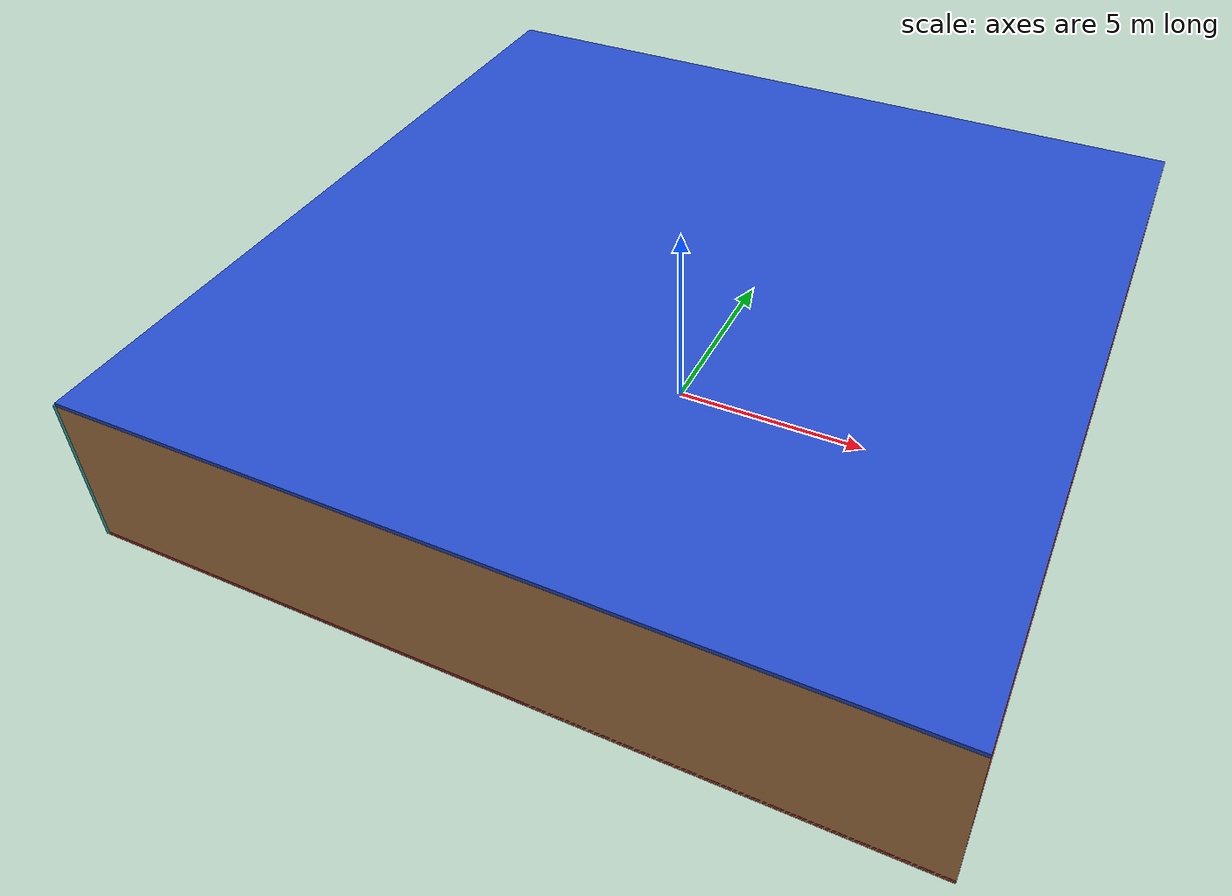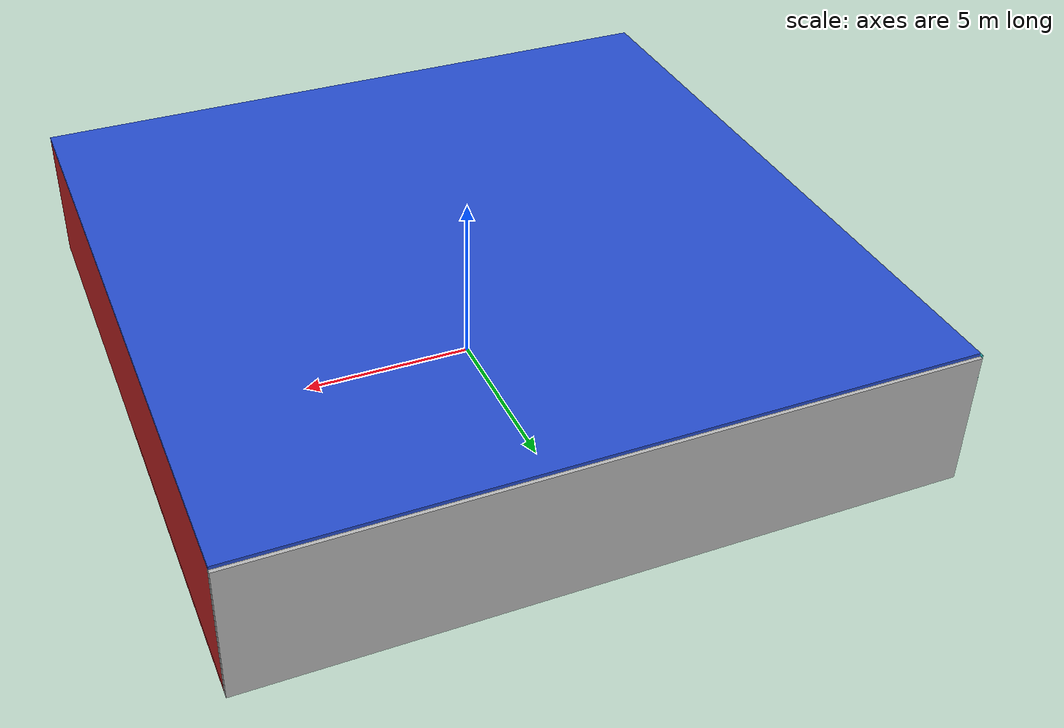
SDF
<sdf version="1.4">
 <world name="default">
  <physics type="ode">
   <max_step_size>0.001</max_step_size>
   <real_time_factor>1</real_time_factor>
   <real_time_update_rate>1000</real_time_update_rate>
   <gravity>0 0 -9.8</gravity>
  </physics>
  <scene><ambient>0.4 0.4 0.4 1</ambient><background>0.7 0.7 0.7 1</background><shadows>1</shadows></scene>
  <model name="Surrounding">
   <static>1</static>
   <link name="Ceiling">
    <collision name="Ceiling_Collision"><geometry><box><size>20 20 0.1</size></box></geometry></collision>
    <visual name="Ceiling_Visual">
     <geometry><box><size>20 20 0.1</size></box></geometry>
     <material>
      <script><uri>file://media/materials/scripts/gazebo.material</uri><name>Gazebo/Blue</name></script>
     </material>
    </visual>
    <pose>0 0 4.05 0 0 0</pose>
   </link>
   <link name="Wall_South">
    <collision name="Wall_South_Collision">
     <geometry><box><size>20 0 4</size></box></geometry>
     <pose>0 0 2 0 -0 0</pose>
    </collision>
    <visual name="Wall_South_Visual">
     <pose>0 0 2 0 -0 0</pose>
     <geometry><box><size>20 0 4</size></box></geometry>
     <material>
      <script><uri>file://media/materials/scripts/gazebo.material</uri><name>Gazebo/WoodFloor</name></script>
     </material>
    </visual>
    <velocity_decay><linear>0</linear><angular>0</angular></velocity_decay>
    <pose>0 -10 0 0 -0 0</pose>
   </link>
   <link name="Wall_East">
    <collision name="Wall_21_Collision">
     <geometry><box><size>20 0 4</size></box></geometry>
     <pose>0 0 2 0 -0 0</pose>
    </collision>
    <visual name="Wall_21_Visual">
     <pose>0 0 2 0 -0 0</pose>
     <geometry><box><size>20 0 4</size></box></geometry>
     <material>
      <script><uri>file://media/materials/scripts/gazebo.material</uri><name>Gazebo/RedGlow</name></script>
     </material>
    </visual>
    <velocity_decay><linear>0</linear><angular>0</angular></velocity_decay>
    <pose>10 0 0 0 -0 1.5708</pose>
   </link>
   <link name="Wall_North">
    <collision name="Wall_22_Collision">
     <geometry><box><size>20 0.2 4</size></box></geometry>
     <pose>0 0 2 0 -0 0</pose>
    </collision>
    <visual name="Wall_22_Visual">
     <pose>0 0 2 0 -0 0</pose>
     <geometry><box><size>20 0.2 4</size></box></geometry>
     <material>
      <script><uri>file://media/materials/scripts/gazebo.material</uri><name>Gazebo/LightOff</name></script>
     </material>
    </visual>
    <velocity_decay><linear>0</linear><angular>0</angular></velocity_decay>
    <pose>0 10 0 0 -0 0</pose>
   </link>
   <link name="Wall_West">
    <collision name="Wall_23_Collision">
     <geometry><box><size>20 0.2 4</size></box></geometry>
     <pose>0 0 2 0 -0 0</pose>
    </collision>
    <visual name="Wall_23_Visual">
     <pose>0 0 2 0 -0 0</pose>
     <geometry><box><size>20 0.2 4</size></box></geometry>
     <material>
      <script>
       <uri>file://media/materials/scripts/gazebo.material</uri>
       <name>Gazebo/TurquoiseGlowOutline</name>
      </script>
     </material>
    </visual>
    <velocity_decay><linear>0</linear><angular>0</angular></velocity_decay>
    <pose>-10 0 0 0 0 -1.5708</pose>
   </link>
   <link name="Ground_link">
    <collision name="collision">
     <pose>0 0 .05 0 -0 0</pose>
     <geometry><box><size>20 20 0.1</size></box></geometry>
    </collision>
    <visual name="visual">
     <pose>0 0 .05 0 -0 0</pose>
     <geometry><box><size>20 20 0.1</size></box></geometry>
     <material>
      <script><uri>file://media/materials/scripts/gazebo.material</uri><name>Gazebo/RedBright</name></script>
     </material>
    </visual>
   </link>
   <static>1</static>
  </model>
  <spherical_coordinates>
   <surface_model>EARTH_WGS84</surface_model>
   <latitude_deg>0</latitude_deg>
   <longitude_deg>0</longitude_deg>
   <elevation>0</elevation>
   <heading_deg>0</heading_deg>
  </spherical_coordinates>
  <light name="lightball_0" type="diffuse">
   <diffuse>0.8 0.8 0.8 1</diffuse>
   <specular>0.2 0.2 0.2 1</specular>
   <attenuation>
    <range>100</range>
    <constant>0.7</constant>
    <linear>0.01</linear>
    <quadratic>0.001</quadratic>
   </attenuation>
   <direction>-0.5 0.1 -0.9</direction>
   <pose>9.53761652763 4.09239236335 2.72225769911 0 0 0</pose>
  </light>
  <light name="lightball_1" type="diffuse">
   <diffuse>0.8 0.8 0.8 1</diffuse>
   <specular>0.2 0.2 0.2 1</specular>
   <attenuation>
    <range>100</range>
    <constant>0.7</constant>
    <linear>0.01</linear>
    <quadratic>0.001</quadratic>
   </attenuation>
   <direction>-0.5 0.1 -0.9</direction>
   <pose>7.8812978167 -0.322187312965 1.7048138783 0 0 0</pose>
  </light>
  <light name="lightball_2" type="diffuse">
   <diffuse>0.8 0.8 0.8 1</diffuse>
   <specular>0.2 0.2 0.2 1</specular>
   <attenuation>
    <range>100</range>
    <constant>0.7</constant>
    <linear>0.01</linear>
    <quadratic>0.001</quadratic>
   </attenuation>
   <direction>-0.5 0.1 -0.9</direction>
   <pose>9.69339334981 -3.92934403297 3.0499176291 0 0 0</pose>
  </light>
  <light name="lightball_3" type="diffuse">
   <diffuse>0.8 0.8 0.8 1</diffuse>
   <specular>0.2 0.2 0.2 1</specular>
   <attenuation>
    <range>100</range>
    <constant>0.7</constant>
    <linear>0.01</linear>
    <quadratic>0.001</quadratic>
   </attenuation>
   <direction>-0.5 0.1 -0.9</direction>
   <pose>-7.81777543802 8.01489557979 2.78077712212 0 0 0</pose>
  </light>
  <light name="lightball_4" type="diffuse">
   <diffuse>0.8 0.8 0.8 1</diffuse>
   <specular>0.2 0.2 0.2 1</specular>
   <attenuation>
    <range>100</range>
    <constant>0.7</constant>
    <linear>0.01</linear>
    <quadratic>0.001</quadratic>
   </attenuation>
   <direction>-0.5 0.1 -0.9</direction>
   <pose>3.49056486907 -4.08167338139 2.31668443787 0 0 0</pose>
  </light>
  <light name="lightball_5" type="diffuse">
   <diffuse>0.8 0.8 0.8 1</diffuse>
   <specular>0.2 0.2 0.2 1</specular>
   <attenuation>
    <range>100</range>
    <constant>0.7</constant>
    <linear>0.01</linear>
    <quadratic>0.001</quadratic>
   </attenuation>
   <direction>-0.5 0.1 -0.9</direction>
   <pose>-1.69541232992 7.60599674807 2.83620155089 0 0 0</pose>
  </light>
  <light name="lightball_6" type="diffuse">
   <diffuse>0.8 0.8 0.8 1</diffuse>
   <specular>0.2 0.2 0.2 1</specular>
   <attenuation>
    <range>100</range>
    <constant>0.7</constant>
    <linear>0.01</linear>
    <quadratic>0.001</quadratic>
   </attenuation>
   <direction>-0.5 0.1 -0.9</direction>
   <pose>6.43308959135 -6.46968005271 0.863403454329 0 0 0</pose>
  </light>
  <light name="lightball_7" type="diffuse">
   <diffuse>0.8 0.8 0.8 1</diffuse>
   <specular>0.2 0.2 0.2 1</specular>
   <attenuation>
    <range>100</range>
    <constant>0.7</constant>
    <linear>0.01</linear>
    <quadratic>0.001</quadratic>
   </attenuation>
   <direction>-0.5 0.1 -0.9</direction>
   <pose>-2.38647101114 7.98198572328 1.81002317214 0 0 0</pose>
  </light>
  <light name="lightball_8" type="diffuse">
   <diffuse>0.8 0.8 0.8 1</diffuse>
   <specular>0.2 0.2 0.2 1</specular>
   <attenuation>
    <range>100</range>
    <constant>0.7</constant>
    <linear>0.01</linear>
    <quadratic>0.001</quadratic>
   </attenuation>
   <direction>-0.5 0.1 -0.9</direction>
   <pose>-7.9420087217 -2.79552432253 1.04442670115 0 0 0</pose>
  </light>
  <light name="lightball_9" type="diffuse">
   <diffuse>0.8 0.8 0.8 1</diffuse>
   <specular>0.2 0.2 0.2 1</specular>
   <attenuation>
    <range>100</range>
    <constant>0.7</constant>
    <linear>0.01</linear>
    <quadratic>0.001</quadratic>
   </attenuation>
   <direction>-0.5 0.1 -0.9</direction>
   <pose>7.0146293435 6.12794158495 0.646010949615 0 0 0</pose>
  </light>
  <light name="lightball_10" type="diffuse">
   <diffuse>0.8 0.8 0.8 1</diffuse>
   <specular>0.2 0.2 0.2 1</specular>
   <attenuation>
    <range>100</range>
    <constant>0.7</constant>
    <linear>0.01</linear>
    <quadratic>0.001</quadratic>
   </attenuation>
   <direction>-0.5 0.1 -0.9</direction>
   <pose>3.50256015791 4.77125722643 3.19491955059 0 0 0</pose>
  </light>
  <light name="lightball_11" type="diffuse">
   <diffuse>0.8 0.8 0.8 1</diffuse>
   <specular>0.2 0.2 0.2 1</specular>
   <attenuation>
    <range>100</range>
    <constant>0.7</constant>
    <linear>0.01</linear>
    <quadratic>0.001</quadratic>
   </attenuation>
   <direction>-0.5 0.1 -0.9</direction>
   <pose>-4.31714111063 -3.42522449893 1.41671577127 0 0 0</pose>
  </light>
  <light name="lightball_12" type="diffuse">
   <diffuse>0.8 0.8 0.8 1</diffuse>
   <specular>0.2 0.2 0.2 1</specular>
   <attenuation>
    <range>100</range>
    <constant>0.7</constant>
    <linear>0.01</linear>
    <quadratic>0.001</quadratic>
   </attenuation>
   <direction>-0.5 0.1 -0.9</direction>
   <pose>-8.5538595362 3.68865627876 2.70181074742 0 0 0</pose>
  </light>
  <light name="lightball_13" type="diffuse">
   <diffuse>0.8 0.8 0.8 1</diffuse>
   <specular>0.2 0.2 0.2 1</specular>
   <attenuation>
    <range>100</range>
    <constant>0.7</constant>
    <linear>0.01</linear>
    <quadratic>0.001</quadratic>
   </attenuation>
   <direction>-0.5 0.1 -0.9</direction>
   <pose>-6.95578386757 2.83395394993 3.87128573225 0 0 0</pose>
  </light>
  <include>
   <uri>model://robocup_3Dsim_goal</uri>
   <pose>-1.69533538999 -1.65589250786 0 0 0 0.902805423912</pose>
  </include>
  <include>
   <uri>model://robocup_3Dsim_goal</uri>
   <pose>-1.28810907036 2.60276812298 0 0 0 2.56190268603</pose>
  </include>
  <include>
   <uri>model://robocup_3Dsim_goal</uri>
   <pose>1.14630223595 -0.534495113144 0 0 0 1.08571579445</pose>
  </include>
  <include>
   <uri>model://robocup_3Dsim_goal</uri>
   <pose>2.16359243964 5.01818771069 0 0 0 0.409274031796</pose>
  </include>
  <include>
   <uri>model://construction_cone</uri>
   <pose>4.18758877967 2.13059556198 0 0 0 0.592863574118</pose>
  </include>
  <include><uri>model://table</uri><pose>6.56721198363 5.13404378093 0 0 0 1.42562986808</pose></include>
 </world>
</sdf>

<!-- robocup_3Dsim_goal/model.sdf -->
<sdf version="1.5">
  <model name="robocup_3d_goal">
    <static>true</static>
    <link name="left_post">
      <pose>0 1.05 0.45 0 0 0</pose>
      <collision name="collision">
        <geometry>
          <cylinder>
            <radius>0.05</radius>
            <length>0.9</length>
          </cylinder>
        </geometry>
      </collision>
      <visual name="visual">
        <geometry>
          <cylinder>
            <radius>0.05</radius>
            <length>0.9</length>
          </cylinder>
        </geometry>
        <material>
          <script>
            <uri>file://media/materials/scripts/gazebo.material</uri>
            <name>Gazebo/ZincYellow</name>
          </script>
        </material>
      </visual>
    </link>
    <link name="left_support_horiz_lower">
      <pose>0.30 1.05 0.01 0 0 0</pose>
      <collision name="collision">
        <geometry>
          <box>
            <size>0.50 0.02 0.02</size>
          </box>
        </geometry>
      </collision>
      <visual name="visual">
        <geometry>
          <box>
            <size>0.50 0.02 0.02</size>
          </box>
        </geometry>
        <material>
          <script>
            <uri>file://media/materials/scripts/gazebo.material</uri>
            <name>Gazebo/White</name>
          </script>
        </material>
      </visual>
    </link>
    <link name="left_support_horiz_upper">
      <pose>0.30 1.05 0.79 0 0 0</pose>
      <collision name="collision">
        <geometry>
          <box>
            <size>0.50 0.02 0.02</size>
          </box>
        </geometry>
      </collision>
      <visual name="visual">
        <geometry>
          <box>
            <size>0.50 0.02 0.02</size>
          </box>
        </geometry>
        <material>
          <script>
            <uri>file://media/materials/scripts/gazebo.material</uri>
            <name>Gazebo/White</name>
          </script>
        </material>
      </visual>
    </link>
    <link name="left_support_vertical">
      <pose>0.56 1.05 0.4 0 1.5708 0</pose>
      <collision name="collision">
        <geometry>
          <box>
            <size>0.80 0.02 0.02</size>
          </box>
        </geometry>
      </collision>
      <visual name="visual">
        <geometry>
          <box>
            <size>0.80 0.02 0.02</size>
          </box>
        </geometry>
        <material>
          <script>
            <uri>file://media/materials/scripts/gazebo.material</uri>
            <name>Gazebo/White</name>
          </script>
        </material>
      </visual>
    </link>
    <link name="right_support_horiz_lower">
      <pose>0.30 -1.05 0.01 0 0 0</pose>
      <collision name="collision">
        <geometry>
          <box>
            <size>0.50 0.02 0.02</size>
          </box>
        </geometry>
      </collision>
      <visual name="visual">
        <geometry>
          <box>
            <size>0.50 0.02 0.02</size>
          </box>
        </geometry>
        <material>
          <script>
            <uri>file://media/materials/scripts/gazebo.material</uri>
            <name>Gazebo/White</name>
          </script>
        </material>
      </visual>
    </link>
    <link name="right_support_horiz_upper">
      <pose>0.30 -1.05 0.79 0 0 0</pose>
      <collision name="collision">
        <geometry>
          <box>
            <size>0.50 0.02 0.02</size>
          </box>
        </geometry>
      </collision>
      <visual name="visual">
        <geometry>
          <box>
            <size>0.50 0.02 0.02</size>
          </box>
        </geometry>
        <material>
          <script>
            <uri>file://media/materials/scripts/gazebo.material</uri>
            <name>Gazebo/White</name>
          </script>
        </material>
      </visual>
    </link>
    <link name="right_support_vertical">
      <pose>0.56 -1.05 0.4 0 1.5708 0</pose>
      <collision name="collision">
        <geometry>
          <box>
            <size>0.80 0.02 0.02</size>
          </box>
        </geometry>
      </collision>
      <visual name="visual">
        <geometry>
          <box>
            <size>0.80 0.02 0.02</size>
          </box>
        </geometry>
        <material>
          <script>
            <uri>file://media/materials/scripts/gazebo.material</uri>
            <name>Gazebo/White</name>
          </script>
        </material>
      </visual>
    </link>
    <link name="center_support_horiz_lower">
      <pose>0.56 0 0.01 0 1.5708 0</pose>
      <collision name="collision">
        <geometry>
          <box>
            <size>0.02 2.08 0.02</size>
          </box>
        </geometry>
      </collision>
      <visual name="visual">
        <geometry>
          <box>
            <size>0.02 2.08 0.02</size>
          </box>
        </geometry>
        <material>
          <script>
            <uri>file://media/materials/scripts/gazebo.material</uri>
            <name>Gazebo/White</name>
          </script>
        </material>
      </visual>
    </link>
    <link name="center_support_horiz_upper">
      <pose>0.56 0 0.79 0 1.5708 0</pose>
      <collision name="collision">
        <geometry>
          <box>
            <size>0.02 2.08 0.02</size>
          </box>
        </geometry>
      </collision>
      <visual name="visual">
        <geometry>
          <box>
            <size>0.02 2.08 0.02</size>
          </box>
        </geometry>
        <material>
          <script>
            <uri>file://media/materials/scripts/gazebo.material</uri>
            <name>Gazebo/White</name>
          </script>
        </material>
      </visual>
    </link>
    <link name="right_post">
      <pose>0 -1.05 0.45 0 0 0</pose>
      <collision name="collision">
        <geometry>
          <cylinder>
            <radius>0.05</radius>
            <length>0.9</length>
          </cylinder>
        </geometry>
      </collision>
      <visual name="visual">
        <geometry>
          <cylinder>
            <radius>0.05</radius>
            <length>0.9</length>
          </cylinder>
        </geometry>
        <material>
          <script>
            <uri>file://media/materials/scripts/gazebo.material</uri>
            <name>Gazebo/ZincYellow</name>
          </script>
        </material>
      </visual>
    </link>
    <link name="crossbar">
      <pose>0 0 0.85 1.57 1.57 0</pose>
      <collision name="collision">
        <geometry>
          <cylinder>
            <radius>0.05</radius>
            <length>2.0</length>
          </cylinder>
        </geometry>
      </collision>
      <visual name="visual">
        <geometry>
          <cylinder>
            <radius>0.05</radius>
            <length>2.0</length>
          </cylinder>
        </geometry>
        <material>
          <script>
            <uri>file://media/materials/scripts/gazebo.material</uri>
            <name>Gazebo/ZincYellow</name>
          </script>
        </material>
      </visual>
    </link>
    <link name="center_net">
      <pose>0.56 0 0.40 0 0 0</pose>
      <collision name="collision">
        <geometry>
          <box>
            <size>0.01 2.1 0.80</size>
          </box>
        </geometry>
      </collision>
      <visual name="visual">
        <geometry>
          <box>
            <size>0.01 2.1 0.80</size>
          </box>
        </geometry>
        <material>
          <script>
            <uri>model://../model_source/models/robocup09_spl_field/materials/scripts/</uri>
            <uri>model://../model_source/models/robocup09_spl_field/materials/textures/</uri>
            <name>RoboCup/Net</name>
          </script>
        </material>
      </visual>
    </link>
    <link name="left_net">
      <pose>0.30 1.05 0.40 0 0 0</pose>
      <collision name="collision">
        <geometry>
          <box>
            <size>0.50 0.01 0.76</size>
          </box>
        </geometry>
      </collision>
      <visual name="visual">
        <geometry>
          <box>
            <size>0.50 0.01 0.76</size>
          </box>
        </geometry>
        <material>
          <script>
            <uri>model://../model_source/models/robocup09_spl_field/materials/scripts/</uri>
            <uri>model://../model_source/models/robocup09_spl_field/materials/textures/</uri>
            <name>RoboCup/Net</name>
          </script>
        </material>
      </visual>
    </link>
    <link name="right_net">
      <pose>0.30 -1.05 0.40 0 0 0</pose>
      <collision name="collision">
        <geometry>
          <box>
            <size>0.50 0.01 0.76</size>
          </box>
        </geometry>
      </collision>
      <visual name="visual">
        <geometry>
          <box>
            <size>0.50 0.01 0.76</size>
          </box>
        </geometry>
        <material>
          <script>
            <uri>model://../model_source/models/robocup09_spl_field/materials/scripts/</uri>
            <uri>model://../model_source/models/robocup09_spl_field/materials/textures/</uri>
            <name>RoboCup/Net</name>
          </script>
        </material>
      </visual>
    </link>
  </model>
</sdf>

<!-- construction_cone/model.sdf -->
<sdf version="1.5">
  <model name="Construction Cone">
    <link name="link">
      <collision name="collision">
        <geometry>
          <mesh>
            <scale>10 10 10</scale>
            <uri>file://isr-testbed/construction_cone/meshes/construction_cone.dae</uri>
          </mesh>
        </geometry>
      </collision>
      <visual name="visual">
        <geometry>
          <mesh>
            <scale>10 10 10</scale>
            <uri>file://isr-testbed/construction_cone/meshes/construction_cone.dae</uri>
          </mesh>
        </geometry>
      </visual>
    </link>
  </model>
</sdf>

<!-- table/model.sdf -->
<sdf version="1.5">
  <model name="table">
    <static>true</static>
    <link name="link">
      <collision name="surface">
        <pose>0 0 1.0 0 0 0</pose>
        <geometry>
          <box>
            <size>1.5 0.8 0.03</size>
          </box>
        </geometry>
        <surface>
          <friction>
            <ode>
              <mu>0.6</mu>
              <mu2>0.6</mu2>
            </ode>
          </friction>
        </surface>
      </collision>
      <visual name="visual1">
        <pose>0 0 1.0 0 0 0</pose>
        <geometry>
          <box>
            <size>1.5 0.8 0.03</size>
          </box>
        </geometry>
        <material>
          <script>
            <uri>model://media/materials/scripts/gazebo.material</uri>
            <name>Gazebo/Wood</name>
          </script>
        </material>
      </visual>
      <collision name="front_left_leg">
        <pose>0.68 0.38 0.5 0 0 0</pose>
        <geometry>
          <cylinder>
            <radius>0.02</radius>
            <length>1.0</length>
          </cylinder>
        </geometry>
      </collision>
      <visual name="front_left_leg">
        <pose>0.68 0.38 0.5 0 0 0</pose>
        <geometry>
          <cylinder>
            <radius>0.02</radius>
            <length>1.0</length>
          </cylinder>
        </geometry>
        <material>
          <script>
            <uri>model://media/materials/scripts/gazebo.material</uri>
            <name>Gazebo/Grey</name>
          </script>
        </material>
      </visual>
      <collision name="front_right_leg">
        <pose>0.68 -0.38 0.5 0 0 0</pose>
        <geometry>
          <cylinder>
            <radius>0.02</radius>
            <length>1.0</length>
          </cylinder>
        </geometry>
      </collision>
      <visual name="front_right_leg">
        <pose>0.68 -0.38 0.5 0 0 0</pose>
        <geometry>
          <cylinder>
            <radius>0.02</radius>
            <length>1.0</length>
          </cylinder>
        </geometry>
        <material>
          <script>
            <uri>model://media/materials/scripts/gazebo.material</uri>
            <name>Gazebo/Grey</name>
          </script>
        </material>
      </visual>
      <collision name="back_right_leg">
        <pose>-0.68 -0.38 0.5 0 0 0</pose>
        <geometry>
          <cylinder>
            <radius>0.02</radius>
            <length>1.0</length>
          </cylinder>
        </geometry>
      </collision>
      <visual name="back_right_leg">
        <pose>-0.68 -0.38 0.5 0 0 0</pose>
        <geometry>
          <cylinder>
            <radius>0.02</radius>
            <length>1.0</length>
          </cylinder>
        </geometry>
        <material>
          <script>
            <uri>model://media/materials/scripts/gazebo.material</uri>
            <name>Gazebo/Grey</name>
          </script>
        </material>
      </visual>
      <collision name="back_left_leg">
        <pose>-0.68 0.38 0.5 0 0 0</pose>
        <geometry>
          <cylinder>
            <radius>0.02</radius>
            <length>1.0</length>
          </cylinder>
        </geometry>
      </collision>
      <visual name="back_left_leg">
        <pose>-0.68 0.38 0.5 0 0 0</pose>
        <geometry>
          <cylinder>
            <radius>0.02</radius>
            <length>1.0</length>
          </cylinder>
        </geometry>
        <material>
          <script>
            <uri>model://media/materials/scripts/gazebo.material</uri>
            <name>Gazebo/Grey</name>
          </script>
        </material>
      </visual>
    </link>
  </model>
</sdf>
